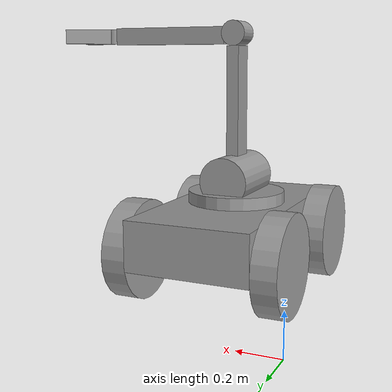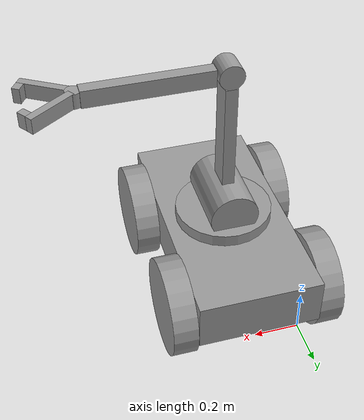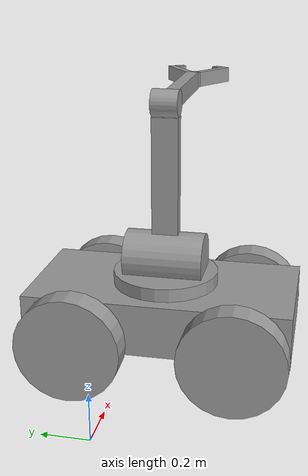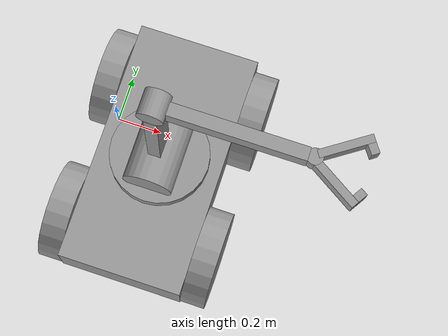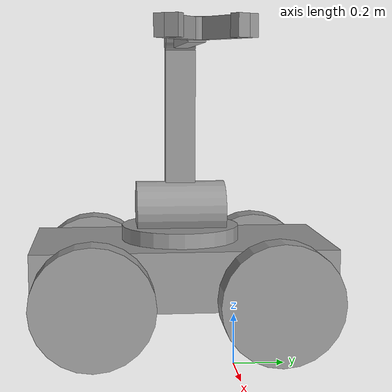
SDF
<?xml version='1.0'?>
<sdf version='1.6'>
  <model name='SimpleRobot'>
    <link name='link_0'>
      <pose frame=''>0.29527 -0.23469 0.458333 0 -0 0</pose>
      <inertial>
        <mass>10</mass>
        <inertia>
          <ixx>0.166667</ixx>
          <ixy>0</ixy>
          <ixz>0</ixz>
          <iyy>0.166667</iyy>
          <iyz>0</iyz>
          <izz>0.166667</izz>
        </inertia>
        <pose frame=''>0 0 0 0 -0 0</pose>
      </inertial>
      <self_collide>0</self_collide>
      <kinematic>0</kinematic>
      <visual name='visual'>
        <pose frame=''>0 0 0 0 -0 0</pose>
        <geometry>
          <box>
            <size>0.5 1 0.2</size>
          </box>
        </geometry>
        <material>
          <lighting>1</lighting>
          <script>
            <uri>file://media/materials/scripts/gazebo.material</uri>
            <name>Gazebo/Grey</name>
          </script>
          <ambient>0.3 0.3 0.3 1</ambient>
          <diffuse>0.7 0.7 0.7 1</diffuse>
          <specular>0.01 0.01 0.01 1</specular>
          <emissive>0 0 0 1</emissive>
          <shader type='vertex'>
            <normal_map>__default__</normal_map>
          </shader>
        </material>
        <transparency>0</transparency>
        <cast_shadows>1</cast_shadows>
      </visual>
      <collision name='collision'>
        <laser_retro>0</laser_retro>
        <max_contacts>10</max_contacts>
        <pose frame=''>0 0 0 0 -0 0</pose>
        <geometry>
          <box>
            <size>0.5 1 0.2</size>
          </box>
        </geometry>
        <surface>
          <friction>
            <ode>
              <mu>1</mu>
              <mu2>1</mu2>
              <fdir1>0 0 0</fdir1>
              <slip1>0</slip1>
              <slip2>0</slip2>
            </ode>
            <torsional>
              <coefficient>1</coefficient>
              <patch_radius>0</patch_radius>
              <surface_radius>0</surface_radius>
              <use_patch_radius>1</use_patch_radius>
              <ode>
                <slip>0</slip>
              </ode>
            </torsional>
          </friction>
          <bounce>
            <restitution_coefficient>0</restitution_coefficient>
            <threshold>1e+06</threshold>
          </bounce>
          <contact>
            <collide_without_contact>0</collide_without_contact>
            <collide_without_contact_bitmask>1</collide_without_contact_bitmask>
            <collide_bitmask>1</collide_bitmask>
            <ode>
              <soft_cfm>0</soft_cfm>
              <soft_erp>0.2</soft_erp>
              <kp>1e+13</kp>
              <kd>1</kd>
              <max_vel>0.01</max_vel>
              <min_depth>0</min_depth>
            </ode>
            <bullet>
              <split_impulse>1</split_impulse>
              <split_impulse_penetration_threshold>-0.01</split_impulse_penetration_threshold>
              <soft_cfm>0</soft_cfm>
              <soft_erp>0.2</soft_erp>
              <kp>1e+13</kp>
              <kd>1</kd>
            </bullet>
          </contact>
        </surface>
      </collision>
    </link>
    <link name='link_0_0'>
      <pose frame=''>0.29527 -0.23469 0.658347 0 -0 0</pose>
      <inertial>
        <mass>1</mass>
        <inertia>
          <ixx>0.145833</ixx>
          <ixy>0</ixy>
          <ixz>0</ixz>
          <iyy>0.145833</iyy>
          <iyz>0</iyz>
          <izz>0.125</izz>
        </inertia>
        <pose frame=''>0 0 0 0 -0 0</pose>
      </inertial>
      <self_collide>0</self_collide>
      <kinematic>0</kinematic>
      <visual name='visual'>
        <pose frame=''>0 0 0 1.5707 -0 0</pose>
        <geometry>
          <cylinder>
            <radius>0.1</radius>
            <length>0.3</length>
          </cylinder>
        </geometry>
        <material>
          <lighting>1</lighting>
          <script>
            <uri>file://media/materials/scripts/gazebo.material</uri>
            <name>Gazebo/Grey</name>
          </script>
          <ambient>0.3 0.3 0.3 1</ambient>
          <diffuse>0.7 0.7 0.7 1</diffuse>
          <specular>0.01 0.01 0.01 1</specular>
          <emissive>0 0 0 1</emissive>
          <shader type='vertex'>
            <normal_map>__default__</normal_map>
          </shader>
        </material>
        <transparency>0</transparency>
        <cast_shadows>1</cast_shadows>
      </visual>
      <collision name='collision'>
        <laser_retro>0</laser_retro>
        <max_contacts>10</max_contacts>
        <pose frame=''>0 0 0 1.5707 -0 0</pose>
        <geometry>
          <cylinder>
            <radius>0.1</radius>
            <length>0.3</length>
          </cylinder>
        </geometry>
        <surface>
          <friction>
            <ode>
              <mu>1</mu>
              <mu2>1</mu2>
              <fdir1>0 0 0</fdir1>
              <slip1>0</slip1>
              <slip2>0</slip2>
            </ode>
            <torsional>
              <coefficient>1</coefficient>
              <patch_radius>0</patch_radius>
              <surface_radius>0</surface_radius>
              <use_patch_radius>1</use_patch_radius>
              <ode>
                <slip>0</slip>
              </ode>
            </torsional>
          </friction>
          <bounce>
            <restitution_coefficient>0</restitution_coefficient>
            <threshold>1e+06</threshold>
          </bounce>
          <contact>
            <collide_without_contact>0</collide_without_contact>
            <collide_without_contact_bitmask>1</collide_without_contact_bitmask>
            <collide_bitmask>1</collide_bitmask>
            <ode>
              <soft_cfm>0</soft_cfm>
              <soft_erp>0.2</soft_erp>
              <kp>1e+13</kp>
              <kd>1</kd>
              <max_vel>0.01</max_vel>
              <min_depth>0</min_depth>
            </ode>
            <bullet>
              <split_impulse>1</split_impulse>
              <split_impulse_penetration_threshold>-0.01</split_impulse_penetration_threshold>
              <soft_cfm>0</soft_cfm>
              <soft_erp>0.2</soft_erp>
              <kp>1e+13</kp>
              <kd>1</kd>
            </bullet>
          </contact>
        </surface>
      </collision>
    </link>
    <link name='link_0_0_clone'>
      <pose frame=''>0.29527 -0.23469 1.24743 0 -0 0</pose>
      <inertial>
        <mass>1</mass>
        <inertia>
          <ixx>0.145833</ixx>
          <ixy>0</ixy>
          <ixz>0</ixz>
          <iyy>0.145833</iyy>
          <iyz>0</iyz>
          <izz>0.125</izz>
        </inertia>
        <pose frame=''>0 0 0 0 -0 0</pose>
      </inertial>
      <self_collide>0</self_collide>
      <kinematic>0</kinematic>
      <visual name='visual_0'>
        <pose frame=''>0 0 0 1.5707 -0 0</pose>
        <geometry>
          <cylinder>
            <radius>0.05</radius>
            <length>0.1</length>
          </cylinder>
        </geometry>
        <material>
          <lighting>1</lighting>
          <script>
            <uri>file://media/materials/scripts/gazebo.material</uri>
            <name>Gazebo/Grey</name>
          </script>
          <ambient>0.3 0.3 0.3 1</ambient>
          <diffuse>0.7 0.7 0.7 1</diffuse>
          <specular>0.01 0.01 0.01 1</specular>
          <emissive>0 0 0 1</emissive>
          <shader type='vertex'>
            <normal_map>__default__</normal_map>
          </shader>
        </material>
        <transparency>0</transparency>
        <cast_shadows>1</cast_shadows>
      </visual>
      <collision name='collision'>
        <laser_retro>0</laser_retro>
        <max_contacts>10</max_contacts>
        <pose frame=''>0 0 0 1.5707 -0 0</pose>
        <geometry>
          <cylinder>
            <radius>0.05</radius>
            <length>0.1</length>
          </cylinder>
        </geometry>
        <surface>
          <friction>
            <ode>
              <mu>1</mu>
              <mu2>1</mu2>
              <fdir1>0 0 0</fdir1>
              <slip1>0</slip1>
              <slip2>0</slip2>
            </ode>
            <torsional>
              <coefficient>1</coefficient>
              <patch_radius>0</patch_radius>
              <surface_radius>0</surface_radius>
              <use_patch_radius>1</use_patch_radius>
              <ode>
                <slip>0</slip>
              </ode>
            </torsional>
          </friction>
          <bounce>
            <restitution_coefficient>0</restitution_coefficient>
            <threshold>1e+06</threshold>
          </bounce>
          <contact>
            <collide_without_contact>0</collide_without_contact>
            <collide_without_contact_bitmask>1</collide_without_contact_bitmask>
            <collide_bitmask>1</collide_bitmask>
            <ode>
              <soft_cfm>0</soft_cfm>
              <soft_erp>0.2</soft_erp>
              <kp>1e+13</kp>
              <kd>1</kd>
              <max_vel>0.01</max_vel>
              <min_depth>0</min_depth>
            </ode>
            <bullet>
              <split_impulse>1</split_impulse>
              <split_impulse_penetration_threshold>-0.01</split_impulse_penetration_threshold>
              <soft_cfm>0</soft_cfm>
              <soft_erp>0.2</soft_erp>
              <kp>1e+13</kp>
              <kd>1</kd>
            </bullet>
          </contact>
        </surface>
      </collision>
    </link>
    <link name='link_0_1'>
      <pose frame=''>0.86527 -0.23469 1.23978 -1e-05 -7e-06 -0.554613</pose>
      <inertial>
        <mass>1</mass>
        <inertia>
          <ixx>0.145833</ixx>
          <ixy>0</ixy>
          <ixz>0</ixz>
          <iyy>0.145833</iyy>
          <iyz>0</iyz>
          <izz>0.125</izz>
        </inertia>
        <pose frame=''>0 0 0 0 -0 0</pose>
      </inertial>
      <self_collide>0</self_collide>
      <kinematic>0</kinematic>
      <visual name='visual'>
        <pose frame=''>0 0 0 0 -0 0</pose>
        <geometry>
          <cylinder>
            <radius>0.03</radius>
            <length>0.06</length>
          </cylinder>
        </geometry>
        <material>
          <lighting>1</lighting>
          <script>
            <uri>file://media/materials/scripts/gazebo.material</uri>
            <name>Gazebo/Grey</name>
          </script>
          <ambient>0.3 0.3 0.3 1</ambient>
          <diffuse>0.7 0.7 0.7 1</diffuse>
          <specular>0.01 0.01 0.01 1</specular>
          <emissive>0 0 0 1</emissive>
          <shader type='vertex'>
            <normal_map>__default__</normal_map>
          </shader>
        </material>
        <transparency>0</transparency>
        <cast_shadows>1</cast_shadows>
      </visual>
      <collision name='collision'>
        <laser_retro>0</laser_retro>
        <max_contacts>10</max_contacts>
        <pose frame=''>0 0 0 0 -0 0</pose>
        <geometry>
          <cylinder>
            <radius>0.03</radius>
            <length>0.06</length>
          </cylinder>
        </geometry>
        <surface>
          <friction>
            <ode>
              <mu>1</mu>
              <mu2>1</mu2>
              <fdir1>0 0 0</fdir1>
              <slip1>0</slip1>
              <slip2>0</slip2>
            </ode>
            <torsional>
              <coefficient>1</coefficient>
              <patch_radius>0</patch_radius>
              <surface_radius>0</surface_radius>
              <use_patch_radius>1</use_patch_radius>
              <ode>
                <slip>0</slip>
              </ode>
            </torsional>
          </friction>
          <bounce>
            <restitution_coefficient>0</restitution_coefficient>
            <threshold>1e+06</threshold>
          </bounce>
          <contact>
            <collide_without_contact>0</collide_without_contact>
            <collide_without_contact_bitmask>1</collide_without_contact_bitmask>
            <collide_bitmask>1</collide_bitmask>
            <ode>
              <soft_cfm>0</soft_cfm>
              <soft_erp>0.2</soft_erp>
              <kp>1e+13</kp>
              <kd>1</kd>
              <max_vel>0.01</max_vel>
              <min_depth>0</min_depth>
            </ode>
            <bullet>
              <split_impulse>1</split_impulse>
              <split_impulse_penetration_threshold>-0.01</split_impulse_penetration_threshold>
              <soft_cfm>0</soft_cfm>
              <soft_erp>0.2</soft_erp>
              <kp>1e+13</kp>
              <kd>1</kd>
            </bullet>
          </contact>
        </surface>
      </collision>
    </link>
    <link name='link_1'>
      <pose frame=''>0.29527 -0.23469 0.583333 0 -0 0</pose>
      <inertial>
        <mass>1</mass>
        <inertia>
          <ixx>0.145833</ixx>
          <ixy>0</ixy>
          <ixz>0</ixz>
          <iyy>0.145833</iyy>
          <iyz>0</iyz>
          <izz>0.125</izz>
        </inertia>
        <pose frame=''>0 0 0 0 -0 0</pose>
      </inertial>
      <self_collide>0</self_collide>
      <kinematic>0</kinematic>
      <visual name='visual'>
        <pose frame=''>0 0 0 0 -0 0</pose>
        <geometry>
          <cylinder>
            <radius>0.2</radius>
            <length>0.05</length>
          </cylinder>
        </geometry>
        <material>
          <lighting>1</lighting>
          <script>
            <uri>file://media/materials/scripts/gazebo.material</uri>
            <name>Gazebo/Grey</name>
          </script>
          <ambient>0.3 0.3 0.3 1</ambient>
          <diffuse>0.7 0.7 0.7 1</diffuse>
          <specular>0.01 0.01 0.01 1</specular>
          <emissive>0 0 0 1</emissive>
          <shader type='vertex'>
            <normal_map>__default__</normal_map>
          </shader>
        </material>
        <transparency>0</transparency>
        <cast_shadows>1</cast_shadows>
      </visual>
      <collision name='collision'>
        <laser_retro>0</laser_retro>
        <max_contacts>10</max_contacts>
        <pose frame=''>0 0 0 0 -0 0</pose>
        <geometry>
          <cylinder>
            <radius>0.2</radius>
            <length>0.05</length>
          </cylinder>
        </geometry>
        <surface>
          <friction>
            <ode>
              <mu>1</mu>
              <mu2>1</mu2>
              <fdir1>0 0 0</fdir1>
              <slip1>0</slip1>
              <slip2>0</slip2>
            </ode>
            <torsional>
              <coefficient>1</coefficient>
              <patch_radius>0</patch_radius>
              <surface_radius>0</surface_radius>
              <use_patch_radius>1</use_patch_radius>
              <ode>
                <slip>0</slip>
              </ode>
            </torsional>
          </friction>
          <bounce>
            <restitution_coefficient>0</restitution_coefficient>
            <threshold>1e+06</threshold>
          </bounce>
          <contact>
            <collide_without_contact>0</collide_without_contact>
            <collide_without_contact_bitmask>1</collide_without_contact_bitmask>
            <collide_bitmask>1</collide_bitmask>
            <ode>
              <soft_cfm>0</soft_cfm>
              <soft_erp>0.2</soft_erp>
              <kp>1e+13</kp>
              <kd>1</kd>
              <max_vel>0.01</max_vel>
              <min_depth>0</min_depth>
            </ode>
            <bullet>
              <split_impulse>1</split_impulse>
              <split_impulse_penetration_threshold>-0.01</split_impulse_penetration_threshold>
              <soft_cfm>0</soft_cfm>
              <soft_erp>0.2</soft_erp>
              <kp>1e+13</kp>
              <kd>1</kd>
            </bullet>
          </contact>
        </surface>
      </collision>
    </link>
    <link name='link_1_0'>
      <pose frame=''>0.29527 -0.23469 0.948333 0 -0 0</pose>
      <inertial>
        <mass>1</mass>
        <inertia>
          <ixx>0.166667</ixx>
          <ixy>0</ixy>
          <ixz>0</ixz>
          <iyy>0.166667</iyy>
          <iyz>0</iyz>
          <izz>0.166667</izz>
        </inertia>
        <pose frame=''>0 0 0 0 -0 0</pose>
      </inertial>
      <self_collide>0</self_collide>
      <kinematic>0</kinematic>
      <visual name='visual'>
        <pose frame=''>0 0 0 0 -0 0</pose>
        <geometry>
          <box>
            <size>0.05 0.1 0.5</size>
          </box>
        </geometry>
        <material>
          <lighting>1</lighting>
          <script>
            <uri>file://media/materials/scripts/gazebo.material</uri>
            <name>Gazebo/Grey</name>
          </script>
          <ambient>0.3 0.3 0.3 1</ambient>
          <diffuse>0.7 0.7 0.7 1</diffuse>
          <specular>0.01 0.01 0.01 1</specular>
          <emissive>0 0 0 1</emissive>
          <shader type='vertex'>
            <normal_map>__default__</normal_map>
          </shader>
        </material>
        <transparency>0</transparency>
        <cast_shadows>1</cast_shadows>
      </visual>
      <collision name='collision'>
        <laser_retro>0</laser_retro>
        <max_contacts>10</max_contacts>
        <pose frame=''>0 0 0 0 -0 0</pose>
        <geometry>
          <box>
            <size>0.05 0.1 0.5</size>
          </box>
        </geometry>
        <surface>
          <friction>
            <ode>
              <mu>1</mu>
              <mu2>1</mu2>
              <fdir1>0 0 0</fdir1>
              <slip1>0</slip1>
              <slip2>0</slip2>
            </ode>
            <torsional>
              <coefficient>1</coefficient>
              <patch_radius>0</patch_radius>
              <surface_radius>0</surface_radius>
              <use_patch_radius>1</use_patch_radius>
              <ode>
                <slip>0</slip>
              </ode>
            </torsional>
          </friction>
          <bounce>
            <restitution_coefficient>0</restitution_coefficient>
            <threshold>1e+06</threshold>
          </bounce>
          <contact>
            <collide_without_contact>0</collide_without_contact>
            <collide_without_contact_bitmask>1</collide_without_contact_bitmask>
            <collide_bitmask>1</collide_bitmask>
            <ode>
              <soft_cfm>0</soft_cfm>
              <soft_erp>0.2</soft_erp>
              <kp>1e+13</kp>
              <kd>1</kd>
              <max_vel>0.01</max_vel>
              <min_depth>0</min_depth>
            </ode>
            <bullet>
              <split_impulse>1</split_impulse>
              <split_impulse_penetration_threshold>-0.01</split_impulse_penetration_threshold>
              <soft_cfm>0</soft_cfm>
              <soft_erp>0.2</soft_erp>
              <kp>1e+13</kp>
              <kd>1</kd>
            </bullet>
          </contact>
        </surface>
      </collision>
    </link>
    <link name='link_1_0_clone'>
      <pose frame=''>-0.00477 0.065305 0.398328 0 -0 0</pose>
      <inertial>
        <mass>1</mass>
        <inertia>
          <ixx>0.145833</ixx>
          <ixy>0</ixy>
          <ixz>0</ixz>
          <iyy>0.145833</iyy>
          <iyz>0</iyz>
          <izz>0.125</izz>
        </inertia>
        <pose frame=''>0 0 0 0 -0 0</pose>
      </inertial>
      <self_collide>0</self_collide>
      <kinematic>0</kinematic>
      <visual name='visual'>
        <pose frame=''>0 0 0 1.5707 0 1.5707</pose>
        <geometry>
          <cylinder>
            <radius>0.2</radius>
            <length>0.1</length>
          </cylinder>
        </geometry>
        <material>
          <lighting>1</lighting>
          <script>
            <uri>file://media/materials/scripts/gazebo.material</uri>
            <name>Gazebo/Grey</name>
          </script>
          <ambient>0.3 0.3 0.3 1</ambient>
          <diffuse>0.7 0.7 0.7 1</diffuse>
          <specular>0.01 0.01 0.01 1</specular>
          <emissive>0 0 0 1</emissive>
          <shader type='vertex'>
            <normal_map>__default__</normal_map>
          </shader>
        </material>
        <transparency>0</transparency>
        <cast_shadows>1</cast_shadows>
      </visual>
      <collision name='collision'>
        <laser_retro>0</laser_retro>
        <max_contacts>10</max_contacts>
        <pose frame=''>0 0 0 1.5707 0 1.5707</pose>
        <geometry>
          <cylinder>
            <radius>0.2</radius>
            <length>0.1</length>
          </cylinder>
        </geometry>
        <surface>
          <friction>
            <ode>
              <mu>1</mu>
              <mu2>1</mu2>
              <fdir1>0 0 0</fdir1>
              <slip1>0</slip1>
              <slip2>0</slip2>
            </ode>
            <torsional>
              <coefficient>1</coefficient>
              <patch_radius>0</patch_radius>
              <surface_radius>0</surface_radius>
              <use_patch_radius>1</use_patch_radius>
              <ode>
                <slip>0</slip>
              </ode>
            </torsional>
          </friction>
          <bounce>
            <restitution_coefficient>0</restitution_coefficient>
            <threshold>1e+06</threshold>
          </bounce>
          <contact>
            <collide_without_contact>0</collide_without_contact>
            <collide_without_contact_bitmask>1</collide_without_contact_bitmask>
            <collide_bitmask>1</collide_bitmask>
            <ode>
              <soft_cfm>0</soft_cfm>
              <soft_erp>0.2</soft_erp>
              <kp>1e+13</kp>
              <kd>1</kd>
              <max_vel>0.01</max_vel>
              <min_depth>0</min_depth>
            </ode>
            <bullet>
              <split_impulse>1</split_impulse>
              <split_impulse_penetration_threshold>-0.01</split_impulse_penetration_threshold>
              <soft_cfm>0</soft_cfm>
              <soft_erp>0.2</soft_erp>
              <kp>1e+13</kp>
              <kd>1</kd>
            </bullet>
          </contact>
        </surface>
      </collision>
    </link>
    <link name='link_1_0_clone_0'>
      <pose frame=''>0.59531 0.065305 0.398328 0 -0 0</pose>
      <inertial>
        <mass>1</mass>
        <inertia>
          <ixx>0.145833</ixx>
          <ixy>0</ixy>
          <ixz>0</ixz>
          <iyy>0.145833</iyy>
          <iyz>0</iyz>
          <izz>0.125</izz>
        </inertia>
        <pose frame=''>0 0 0 0 -0 0</pose>
      </inertial>
      <self_collide>0</self_collide>
      <kinematic>0</kinematic>
      <visual name='visual'>
        <pose frame=''>0 0 0 1.5707 0 1.5707</pose>
        <geometry>
          <cylinder>
            <radius>0.2</radius>
            <length>0.1</length>
          </cylinder>
        </geometry>
        <material>
          <lighting>1</lighting>
          <script>
            <uri>file://media/materials/scripts/gazebo.material</uri>
            <name>Gazebo/Grey</name>
          </script>
          <ambient>0.3 0.3 0.3 1</ambient>
          <diffuse>0.7 0.7 0.7 1</diffuse>
          <specular>0.01 0.01 0.01 1</specular>
          <emissive>0 0 0 1</emissive>
          <shader type='vertex'>
            <normal_map>__default__</normal_map>
          </shader>
        </material>
        <transparency>0</transparency>
        <cast_shadows>1</cast_shadows>
      </visual>
      <collision name='collision'>
        <laser_retro>0</laser_retro>
        <max_contacts>10</max_contacts>
        <pose frame=''>0 0 0 1.5707 0 1.5707</pose>
        <geometry>
          <cylinder>
            <radius>0.2</radius>
            <length>0.1</length>
          </cylinder>
        </geometry>
        <surface>
          <friction>
            <ode>
              <mu>1</mu>
              <mu2>1</mu2>
              <fdir1>0 0 0</fdir1>
              <slip1>0</slip1>
              <slip2>0</slip2>
            </ode>
            <torsional>
              <coefficient>1</coefficient>
              <patch_radius>0</patch_radius>
              <surface_radius>0</surface_radius>
              <use_patch_radius>1</use_patch_radius>
              <ode>
                <slip>0</slip>
              </ode>
            </torsional>
          </friction>
          <bounce>
            <restitution_coefficient>0</restitution_coefficient>
            <threshold>1e+06</threshold>
          </bounce>
          <contact>
            <collide_without_contact>0</collide_without_contact>
            <collide_without_contact_bitmask>1</collide_without_contact_bitmask>
            <collide_bitmask>1</collide_bitmask>
            <ode>
              <soft_cfm>0</soft_cfm>
              <soft_erp>0.2</soft_erp>
              <kp>1e+13</kp>
              <kd>1</kd>
              <max_vel>0.01</max_vel>
              <min_depth>0</min_depth>
            </ode>
            <bullet>
              <split_impulse>1</split_impulse>
              <split_impulse_penetration_threshold>-0.01</split_impulse_penetration_threshold>
              <soft_cfm>0</soft_cfm>
              <soft_erp>0.2</soft_erp>
              <kp>1e+13</kp>
              <kd>1</kd>
            </bullet>
          </contact>
        </surface>
      </collision>
    </link>
    <link name='link_1_0_clone_1'>
      <pose frame=''>0.59531 -0.534685 0.398328 0 -0 0</pose>
      <inertial>
        <mass>1</mass>
        <inertia>
          <ixx>0.145833</ixx>
          <ixy>0</ixy>
          <ixz>0</ixz>
          <iyy>0.145833</iyy>
          <iyz>0</iyz>
          <izz>0.125</izz>
        </inertia>
        <pose frame=''>0 0 0 0 -0 0</pose>
      </inertial>
      <self_collide>0</self_collide>
      <kinematic>0</kinematic>
      <visual name='visual'>
        <pose frame=''>0 0 0 1.5707 0 1.5707</pose>
        <geometry>
          <cylinder>
            <radius>0.2</radius>
            <length>0.1</length>
          </cylinder>
        </geometry>
        <material>
          <lighting>1</lighting>
          <script>
            <uri>file://media/materials/scripts/gazebo.material</uri>
            <name>Gazebo/Grey</name>
          </script>
          <ambient>0.3 0.3 0.3 1</ambient>
          <diffuse>0.7 0.7 0.7 1</diffuse>
          <specular>0.01 0.01 0.01 1</specular>
          <emissive>0 0 0 1</emissive>
          <shader type='vertex'>
            <normal_map>__default__</normal_map>
          </shader>
        </material>
        <transparency>0</transparency>
        <cast_shadows>1</cast_shadows>
      </visual>
      <collision name='collision'>
        <laser_retro>0</laser_retro>
        <max_contacts>10</max_contacts>
        <pose frame=''>0 0 0 1.5707 0 1.5707</pose>
        <geometry>
          <cylinder>
            <radius>0.2</radius>
            <length>0.1</length>
          </cylinder>
        </geometry>
        <surface>
          <friction>
            <ode>
              <mu>1</mu>
              <mu2>1</mu2>
              <fdir1>0 0 0</fdir1>
              <slip1>0</slip1>
              <slip2>0</slip2>
            </ode>
            <torsional>
              <coefficient>1</coefficient>
              <patch_radius>0</patch_radius>
              <surface_radius>0</surface_radius>
              <use_patch_radius>1</use_patch_radius>
              <ode>
                <slip>0</slip>
              </ode>
            </torsional>
          </friction>
          <bounce>
            <restitution_coefficient>0</restitution_coefficient>
            <threshold>1e+06</threshold>
          </bounce>
          <contact>
            <collide_without_contact>0</collide_without_contact>
            <collide_without_contact_bitmask>1</collide_without_contact_bitmask>
            <collide_bitmask>1</collide_bitmask>
            <ode>
              <soft_cfm>0</soft_cfm>
              <soft_erp>0.2</soft_erp>
              <kp>1e+13</kp>
              <kd>1</kd>
              <max_vel>0.01</max_vel>
              <min_depth>0</min_depth>
            </ode>
            <bullet>
              <split_impulse>1</split_impulse>
              <split_impulse_penetration_threshold>-0.01</split_impulse_penetration_threshold>
              <soft_cfm>0</soft_cfm>
              <soft_erp>0.2</soft_erp>
              <kp>1e+13</kp>
              <kd>1</kd>
            </bullet>
          </contact>
        </surface>
      </collision>
    </link>
    <link name='link_1_0_clone_1_clone'>
      <pose frame=''>-0.00477 -0.534685 0.398328 0 -0 0</pose>
      <inertial>
        <mass>1</mass>
        <inertia>
          <ixx>0.145833</ixx>
          <ixy>0</ixy>
          <ixz>0</ixz>
          <iyy>0.145833</iyy>
          <iyz>0</iyz>
          <izz>0.125</izz>
        </inertia>
        <pose frame=''>0 0 0 0 -0 0</pose>
      </inertial>
      <self_collide>0</self_collide>
      <kinematic>0</kinematic>
      <visual name='visual'>
        <pose frame=''>0 0 0 1.5707 0 1.5707</pose>
        <geometry>
          <cylinder>
            <radius>0.2</radius>
            <length>0.1</length>
          </cylinder>
        </geometry>
        <material>
          <lighting>1</lighting>
          <script>
            <uri>file://media/materials/scripts/gazebo.material</uri>
            <name>Gazebo/Grey</name>
          </script>
          <ambient>0.3 0.3 0.3 1</ambient>
          <diffuse>0.7 0.7 0.7 1</diffuse>
          <specular>0.01 0.01 0.01 1</specular>
          <emissive>0 0 0 1</emissive>
          <shader type='vertex'>
            <normal_map>__default__</normal_map>
          </shader>
        </material>
        <transparency>0</transparency>
        <cast_shadows>1</cast_shadows>
      </visual>
      <collision name='collision'>
        <laser_retro>0</laser_retro>
        <max_contacts>10</max_contacts>
        <pose frame=''>0 0 0 1.5707 0 1.5707</pose>
        <geometry>
          <cylinder>
            <radius>0.2</radius>
            <length>0.1</length>
          </cylinder>
        </geometry>
        <surface>
          <friction>
            <ode>
              <mu>1</mu>
              <mu2>1</mu2>
              <fdir1>0 0 0</fdir1>
              <slip1>0</slip1>
              <slip2>0</slip2>
            </ode>
            <torsional>
              <coefficient>1</coefficient>
              <patch_radius>0</patch_radius>
              <surface_radius>0</surface_radius>
              <use_patch_radius>1</use_patch_radius>
              <ode>
                <slip>0</slip>
              </ode>
            </torsional>
          </friction>
          <bounce>
            <restitution_coefficient>0</restitution_coefficient>
            <threshold>1e+06</threshold>
          </bounce>
          <contact>
            <collide_without_contact>0</collide_without_contact>
            <collide_without_contact_bitmask>1</collide_without_contact_bitmask>
            <collide_bitmask>1</collide_bitmask>
            <ode>
              <soft_cfm>0</soft_cfm>
              <soft_erp>0.2</soft_erp>
              <kp>1e+13</kp>
              <kd>1</kd>
              <max_vel>0.01</max_vel>
              <min_depth>0</min_depth>
            </ode>
            <bullet>
              <split_impulse>1</split_impulse>
              <split_impulse_penetration_threshold>-0.01</split_impulse_penetration_threshold>
              <soft_cfm>0</soft_cfm>
              <soft_erp>0.2</soft_erp>
              <kp>1e+13</kp>
              <kd>1</kd>
            </bullet>
          </contact>
        </surface>
      </collision>
    </link>
    <link name='link_1_0_clone_2'>
      <pose frame=''>0.59527 -0.23469 1.23978 0 -0 0</pose>
      <inertial>
        <mass>1</mass>
        <inertia>
          <ixx>0.166667</ixx>
          <ixy>0</ixy>
          <ixz>0</ixz>
          <iyy>0.166667</iyy>
          <iyz>0</iyz>
          <izz>0.166667</izz>
        </inertia>
        <pose frame=''>0 0 0 0 -0 0</pose>
      </inertial>
      <self_collide>0</self_collide>
      <kinematic>0</kinematic>
      <visual name='visual_0'>
        <pose frame=''>0 0 0 0 1.5707 0</pose>
        <geometry>
          <box>
            <size>0.07 0.05 0.5</size>
          </box>
        </geometry>
        <material>
          <lighting>1</lighting>
          <script>
            <uri>file://media/materials/scripts/gazebo.material</uri>
            <name>Gazebo/Grey</name>
          </script>
          <ambient>0.3 0.3 0.3 1</ambient>
          <diffuse>0.7 0.7 0.7 1</diffuse>
          <specular>0.01 0.01 0.01 1</specular>
          <emissive>0 0 0 1</emissive>
          <shader type='vertex'>
            <normal_map>__default__</normal_map>
          </shader>
        </material>
        <transparency>0</transparency>
        <cast_shadows>1</cast_shadows>
      </visual>
      <collision name='collision'>
        <laser_retro>0</laser_retro>
        <max_contacts>10</max_contacts>
        <pose frame=''>0 0 0 0 1.5707 0</pose>
        <geometry>
          <box>
            <size>0.07 0.05 0.5</size>
          </box>
        </geometry>
        <surface>
          <friction>
            <ode>
              <mu>1</mu>
              <mu2>1</mu2>
              <fdir1>0 0 0</fdir1>
              <slip1>0</slip1>
              <slip2>0</slip2>
            </ode>
            <torsional>
              <coefficient>1</coefficient>
              <patch_radius>0</patch_radius>
              <surface_radius>0</surface_radius>
              <use_patch_radius>1</use_patch_radius>
              <ode>
                <slip>0</slip>
              </ode>
            </torsional>
          </friction>
          <bounce>
            <restitution_coefficient>0</restitution_coefficient>
            <threshold>1e+06</threshold>
          </bounce>
          <contact>
            <collide_without_contact>0</collide_without_contact>
            <collide_without_contact_bitmask>1</collide_without_contact_bitmask>
            <collide_bitmask>1</collide_bitmask>
            <ode>
              <soft_cfm>0</soft_cfm>
              <soft_erp>0.2</soft_erp>
              <kp>1e+13</kp>
              <kd>1</kd>
              <max_vel>0.01</max_vel>
              <min_depth>0</min_depth>
            </ode>
            <bullet>
              <split_impulse>1</split_impulse>
              <split_impulse_penetration_threshold>-0.01</split_impulse_penetration_threshold>
              <soft_cfm>0</soft_cfm>
              <soft_erp>0.2</soft_erp>
              <kp>1e+13</kp>
              <kd>1</kd>
            </bullet>
          </contact>
        </surface>
      </collision>
    </link>
    <link name='link_1_1'>
      <pose frame=''>0.954832 -0.298993 1.23978 -1e-05 -7e-06 -0.554613</pose>
      <inertial>
        <mass>1</mass>
        <inertia>
          <ixx>0.166667</ixx>
          <ixy>0</ixy>
          <ixz>0</ixz>
          <iyy>0.166667</iyy>
          <iyz>0</iyz>
          <izz>0.166667</izz>
        </inertia>
        <pose frame=''>0 0 0 0 -0 0</pose>
      </inertial>
      <self_collide>0</self_collide>
      <kinematic>0</kinematic>
      <visual name='visual'>
        <pose frame=''>0 0 0 0 -0 0</pose>
        <geometry>
          <box>
            <size>0.2 0.03 0.06</size>
          </box>
        </geometry>
        <material>
          <lighting>1</lighting>
          <script>
            <uri>file://media/materials/scripts/gazebo.material</uri>
            <name>Gazebo/Grey</name>
          </script>
          <ambient>0.3 0.3 0.3 1</ambient>
          <diffuse>0.7 0.7 0.7 1</diffuse>
          <specular>0.01 0.01 0.01 1</specular>
          <emissive>0 0 0 1</emissive>
          <shader type='vertex'>
            <normal_map>__default__</normal_map>
          </shader>
        </material>
        <transparency>0</transparency>
        <cast_shadows>1</cast_shadows>
      </visual>
      <collision name='collision'>
        <laser_retro>0</laser_retro>
        <max_contacts>10</max_contacts>
        <pose frame=''>0 0 0 0 -0 0</pose>
        <geometry>
          <box>
            <size>0.2 0.03 0.06</size>
          </box>
        </geometry>
        <surface>
          <friction>
            <ode>
              <mu>1</mu>
              <mu2>1</mu2>
              <fdir1>0 0 0</fdir1>
              <slip1>0</slip1>
              <slip2>0</slip2>
            </ode>
            <torsional>
              <coefficient>1</coefficient>
              <patch_radius>0</patch_radius>
              <surface_radius>0</surface_radius>
              <use_patch_radius>1</use_patch_radius>
              <ode>
                <slip>0</slip>
              </ode>
            </torsional>
          </friction>
          <bounce>
            <restitution_coefficient>0</restitution_coefficient>
            <threshold>1e+06</threshold>
          </bounce>
          <contact>
            <collide_without_contact>0</collide_without_contact>
            <collide_without_contact_bitmask>1</collide_without_contact_bitmask>
            <collide_bitmask>1</collide_bitmask>
            <ode>
              <soft_cfm>0</soft_cfm>
              <soft_erp>0.2</soft_erp>
              <kp>1e+13</kp>
              <kd>1</kd>
              <max_vel>0.01</max_vel>
              <min_depth>0</min_depth>
            </ode>
            <bullet>
              <split_impulse>1</split_impulse>
              <split_impulse_penetration_threshold>-0.01</split_impulse_penetration_threshold>
              <soft_cfm>0</soft_cfm>
              <soft_erp>0.2</soft_erp>
              <kp>1e+13</kp>
              <kd>1</kd>
            </bullet>
          </contact>
        </surface>
      </collision>
    </link>
    <link name='link_1_1_clone'>
      <pose frame=''>0.954569 -0.166494 1.23978 -1.6e-05 1.7e-05 0.603129</pose>
      <inertial>
        <mass>1</mass>
        <inertia>
          <ixx>0.166667</ixx>
          <ixy>0</ixy>
          <ixz>0</ixz>
          <iyy>0.166667</iyy>
          <iyz>0</iyz>
          <izz>0.166667</izz>
        </inertia>
        <pose frame=''>0 0 0 0 -0 0</pose>
      </inertial>
      <self_collide>0</self_collide>
      <kinematic>0</kinematic>
      <visual name='visual_0'>
        <pose frame=''>0 0 0 0 -0 0</pose>
        <geometry>
          <box>
            <size>0.2 0.03 0.06</size>
          </box>
        </geometry>
        <material>
          <lighting>1</lighting>
          <script>
            <uri>file://media/materials/scripts/gazebo.material</uri>
            <name>Gazebo/Grey</name>
          </script>
          <ambient>0.3 0.3 0.3 1</ambient>
          <diffuse>0.7 0.7 0.7 1</diffuse>
          <specular>0.01 0.01 0.01 1</specular>
          <emissive>0 0 0 1</emissive>
          <shader type='vertex'>
            <normal_map>__default__</normal_map>
          </shader>
        </material>
        <transparency>0</transparency>
        <cast_shadows>1</cast_shadows>
      </visual>
      <collision name='collision'>
        <laser_retro>0</laser_retro>
        <max_contacts>10</max_contacts>
        <pose frame=''>0 0 0 0 -0 0</pose>
        <geometry>
          <box>
            <size>0.2 0.03 0.06</size>
          </box>
        </geometry>
        <surface>
          <friction>
            <ode>
              <mu>1</mu>
              <mu2>1</mu2>
              <fdir1>0 0 0</fdir1>
              <slip1>0</slip1>
              <slip2>0</slip2>
            </ode>
            <torsional>
              <coefficient>1</coefficient>
              <patch_radius>0</patch_radius>
              <surface_radius>0</surface_radius>
              <use_patch_radius>1</use_patch_radius>
              <ode>
                <slip>0</slip>
              </ode>
            </torsional>
          </friction>
          <bounce>
            <restitution_coefficient>0</restitution_coefficient>
            <threshold>1e+06</threshold>
          </bounce>
          <contact>
            <collide_without_contact>0</collide_without_contact>
            <collide_without_contact_bitmask>1</collide_without_contact_bitmask>
            <collide_bitmask>1</collide_bitmask>
            <ode>
              <soft_cfm>0</soft_cfm>
              <soft_erp>0.2</soft_erp>
              <kp>1e+13</kp>
              <kd>1</kd>
              <max_vel>0.01</max_vel>
              <min_depth>0</min_depth>
            </ode>
            <bullet>
              <split_impulse>1</split_impulse>
              <split_impulse_penetration_threshold>-0.01</split_impulse_penetration_threshold>
              <soft_cfm>0</soft_cfm>
              <soft_erp>0.2</soft_erp>
              <kp>1e+13</kp>
              <kd>1</kd>
            </bullet>
          </contact>
        </surface>
      </collision>
    </link>
    <link name='link_1_1_clone_clone'>
      <pose frame=''>1.04426 -0.146801 1.23978 -6e-06 1e-06 -0.947743</pose>
      <inertial>
        <mass>1</mass>
        <inertia>
          <ixx>0.166667</ixx>
          <ixy>0</ixy>
          <ixz>0</ixz>
          <iyy>0.166667</iyy>
          <iyz>0</iyz>
          <izz>0.166667</izz>
        </inertia>
        <pose frame=''>0 0 0 0 -0 0</pose>
      </inertial>
      <self_collide>0</self_collide>
      <kinematic>0</kinematic>
      <gravity>1</gravity>
      <visual name='visual_0'>
        <pose frame=''>0 0 0 0 -0 0</pose>
        <geometry>
          <box>
            <size>0.04 0.03 0.06</size>
          </box>
        </geometry>
        <material>
          <lighting>1</lighting>
          <script>
            <uri>file://media/materials/scripts/gazebo.material</uri>
            <name>Gazebo/Grey</name>
          </script>
          <ambient>0.3 0.3 0.3 1</ambient>
          <diffuse>0.7 0.7 0.7 1</diffuse>
          <specular>0.01 0.01 0.01 1</specular>
          <emissive>0 0 0 1</emissive>
          <shader type='vertex'>
            <normal_map>__default__</normal_map>
          </shader>
        </material>
        <transparency>0</transparency>
        <cast_shadows>1</cast_shadows>
      </visual>
      <collision name='collision'>
        <laser_retro>0</laser_retro>
        <max_contacts>10</max_contacts>
        <pose frame=''>0 0 0 0 -0 0</pose>
        <geometry>
          <box>
            <size>0.04 0.03 0.06</size>
          </box>
        </geometry>
        <surface>
          <friction>
            <ode>
              <mu>1</mu>
              <mu2>1</mu2>
              <fdir1>0 0 0</fdir1>
              <slip1>0</slip1>
              <slip2>0</slip2>
            </ode>
            <torsional>
              <coefficient>1</coefficient>
              <patch_radius>0</patch_radius>
              <surface_radius>0</surface_radius>
              <use_patch_radius>1</use_patch_radius>
              <ode>
                <slip>0</slip>
              </ode>
            </torsional>
          </friction>
          <bounce>
            <restitution_coefficient>0</restitution_coefficient>
            <threshold>1e+06</threshold>
          </bounce>
          <contact>
            <collide_without_contact>0</collide_without_contact>
            <collide_without_contact_bitmask>1</collide_without_contact_bitmask>
            <collide_bitmask>1</collide_bitmask>
            <ode>
              <soft_cfm>0</soft_cfm>
              <soft_erp>0.2</soft_erp>
              <kp>1e+13</kp>
              <kd>1</kd>
              <max_vel>0.01</max_vel>
              <min_depth>0</min_depth>
            </ode>
            <bullet>
              <split_impulse>1</split_impulse>
              <split_impulse_penetration_threshold>-0.01</split_impulse_penetration_threshold>
              <soft_cfm>0</soft_cfm>
              <soft_erp>0.2</soft_erp>
              <kp>1e+13</kp>
              <kd>1</kd>
            </bullet>
          </contact>
        </surface>
      </collision>
    </link>
    <link name='link_1_1_clone_clone_clone'>
      <pose frame=''>1.04508 -0.314757 1.23978 -1e-05 1.4e-05 -2.12888</pose>
      <inertial>
        <mass>1</mass>
        <inertia>
          <ixx>0.166667</ixx>
          <ixy>0</ixy>
          <ixz>0</ixz>
          <iyy>0.166667</iyy>
          <iyz>0</iyz>
          <izz>0.166667</izz>
        </inertia>
        <pose frame=''>0 0 0 0 -0 0</pose>
      </inertial>
      <self_collide>0</self_collide>
      <kinematic>0</kinematic>
      <visual name='visual_0'>
        <pose frame=''>0 0 0 0 -0 0</pose>
        <geometry>
          <box>
            <size>0.04 0.03 0.06</size>
          </box>
        </geometry>
        <material>
          <lighting>1</lighting>
          <script>
            <uri>file://media/materials/scripts/gazebo.material</uri>
            <name>Gazebo/Grey</name>
          </script>
          <ambient>0.3 0.3 0.3 1</ambient>
          <diffuse>0.7 0.7 0.7 1</diffuse>
          <specular>0.01 0.01 0.01 1</specular>
          <emissive>0 0 0 1</emissive>
          <shader type='vertex'>
            <normal_map>__default__</normal_map>
          </shader>
        </material>
        <transparency>0</transparency>
        <cast_shadows>1</cast_shadows>
      </visual>
      <collision name='collision'>
        <laser_retro>0</laser_retro>
        <max_contacts>10</max_contacts>
        <pose frame=''>0 0 0 0 -0 0</pose>
        <geometry>
          <box>
            <size>0.04 0.03 0.06</size>
          </box>
        </geometry>
        <surface>
          <friction>
            <ode>
              <mu>1</mu>
              <mu2>1</mu2>
              <fdir1>0 0 0</fdir1>
              <slip1>0</slip1>
              <slip2>0</slip2>
            </ode>
            <torsional>
              <coefficient>1</coefficient>
              <patch_radius>0</patch_radius>
              <surface_radius>0</surface_radius>
              <use_patch_radius>1</use_patch_radius>
              <ode>
                <slip>0</slip>
              </ode>
            </torsional>
          </friction>
          <bounce>
            <restitution_coefficient>0</restitution_coefficient>
            <threshold>1e+06</threshold>
          </bounce>
          <contact>
            <collide_without_contact>0</collide_without_contact>
            <collide_without_contact_bitmask>1</collide_without_contact_bitmask>
            <collide_bitmask>1</collide_bitmask>
            <ode>
              <soft_cfm>0</soft_cfm>
              <soft_erp>0.2</soft_erp>
              <kp>1e+13</kp>
              <kd>1</kd>
              <max_vel>0.01</max_vel>
              <min_depth>0</min_depth>
            </ode>
            <bullet>
              <split_impulse>1</split_impulse>
              <split_impulse_penetration_threshold>-0.01</split_impulse_penetration_threshold>
              <soft_cfm>0</soft_cfm>
              <soft_erp>0.2</soft_erp>
              <kp>1e+13</kp>
              <kd>1</kd>
            </bullet>
          </contact>
        </surface>
      </collision>
    </link>
    <joint name='link_0_0_JOINT_9' type='fixed'>
      <parent>link_0_0</parent>
      <child>link_1_0</child>
      <pose frame=''>0 0 0 0 -0 0</pose>
      <physics>
        <ode>
          <limit>
            <cfm>0</cfm>
            <erp>0.2</erp>
          </limit>
          <suspension>
            <cfm>0</cfm>
            <erp>0.2</erp>
          </suspension>
        </ode>
      </physics>
    </joint>
    <joint name='link_0_0_clone_JOINT_11' type='revolute'>
      <parent>link_0_0_clone</parent>
      <child>link_1_0_clone_2</child>
      <pose frame=''>0 0 0 0 -0 0</pose>
      <axis>
        <xyz>1 0 0</xyz>
        <use_parent_model_frame>0</use_parent_model_frame>
        <limit>
          <lower>-1.79769e+308</lower>
          <upper>1.79769e+308</upper>
          <effort>-1</effort>
          <velocity>-1</velocity>
        </limit>
        <dynamics>
          <spring_reference>0</spring_reference>
          <spring_stiffness>0</spring_stiffness>
          <damping>0</damping>
          <friction>0</friction>
        </dynamics>
      </axis>
      <physics>
        <ode>
          <limit>
            <cfm>0</cfm>
            <erp>0.2</erp>
          </limit>
          <suspension>
            <cfm>0</cfm>
            <erp>0.2</erp>
          </suspension>
        </ode>
      </physics>
    </joint>
    <joint name='link_0_1_JOINT_1' type='revolute'>
      <parent>link_0_1</parent>
      <child>link_1_1</child>
      <pose frame=''>-0.11 0.01 0 0 -0 0</pose>
      <axis>
        <xyz>0 0 1</xyz>
        <use_parent_model_frame>0</use_parent_model_frame>
        <limit>
          <lower>-1.79769e+308</lower>
          <upper>1.79769e+308</upper>
          <effort>-1</effort>
          <velocity>-1</velocity>
        </limit>
        <dynamics>
          <spring_reference>0</spring_reference>
          <spring_stiffness>0</spring_stiffness>
          <damping>0</damping>
          <friction>0</friction>
        </dynamics>
      </axis>
      <physics>
        <ode>
          <limit>
            <cfm>0</cfm>
            <erp>0.2</erp>
          </limit>
          <suspension>
            <cfm>0</cfm>
            <erp>0.2</erp>
          </suspension>
        </ode>
      </physics>
    </joint>
    <joint name='link_0_1_JOINT_3' type='revolute'>
      <parent>link_0_1</parent>
      <child>link_1_1_clone</child>
      <pose frame=''>-0.11 -0.005 0 0 -0 0</pose>
      <axis>
        <xyz>0 0 1</xyz>
        <use_parent_model_frame>0</use_parent_model_frame>
        <limit>
          <lower>-1.79769e+308</lower>
          <upper>1.79769e+308</upper>
          <effort>-1</effort>
          <velocity>-1</velocity>
        </limit>
        <dynamics>
          <spring_reference>0</spring_reference>
          <spring_stiffness>0</spring_stiffness>
          <damping>0</damping>
          <friction>0</friction>
        </dynamics>
      </axis>
      <physics>
        <ode>
          <limit>
            <cfm>0</cfm>
            <erp>0.2</erp>
          </limit>
          <suspension>
            <cfm>0</cfm>
            <erp>0.2</erp>
          </suspension>
        </ode>
      </physics>
    </joint>
    <joint name='link_0_JOINT_1' type='revolute'>
      <parent>link_0</parent>
      <child>link_1</child>
      <pose frame=''>0 0 0 0 -0 0</pose>
      <axis>
        <xyz>0 0 1</xyz>
        <use_parent_model_frame>0</use_parent_model_frame>
        <limit>
          <lower>-1.79769e+308</lower>
          <upper>1.79769e+308</upper>
          <effort>-1</effort>
          <velocity>-1</velocity>
        </limit>
        <dynamics>
          <spring_reference>0</spring_reference>
          <spring_stiffness>0</spring_stiffness>
          <damping>0</damping>
          <friction>0</friction>
        </dynamics>
      </axis>
      <physics>
        <ode>
          <limit>
            <cfm>0</cfm>
            <erp>0.2</erp>
          </limit>
          <suspension>
            <cfm>0</cfm>
            <erp>0.2</erp>
          </suspension>
        </ode>
      </physics>
    </joint>
    <joint name='link_0_JOINT_2' type='revolute'>
      <parent>link_0</parent>
      <child>link_1_0_clone_0</child>
      <pose frame=''>0 0 0 0 -0 0</pose>
      <axis>
        <xyz>1 0 0</xyz>
        <use_parent_model_frame>0</use_parent_model_frame>
        <limit>
          <lower>-1.79769e+308</lower>
          <upper>1.79769e+308</upper>
          <effort>-1</effort>
          <velocity>-1</velocity>
        </limit>
        <dynamics>
          <spring_reference>0</spring_reference>
          <spring_stiffness>0</spring_stiffness>
          <damping>0</damping>
          <friction>0</friction>
        </dynamics>
      </axis>
      <physics>
        <ode>
          <limit>
            <cfm>0</cfm>
            <erp>0.2</erp>
          </limit>
          <suspension>
            <cfm>0</cfm>
            <erp>0.2</erp>
          </suspension>
        </ode>
      </physics>
    </joint>
    <joint name='link_0_JOINT_3' type='revolute'>
      <parent>link_0</parent>
      <child>link_1_0_clone</child>
      <pose frame=''>0 0 0 0 -0 0</pose>
      <axis>
        <xyz>1 0 0</xyz>
        <use_parent_model_frame>0</use_parent_model_frame>
        <limit>
          <lower>-1.79769e+308</lower>
          <upper>1.79769e+308</upper>
          <effort>-1</effort>
          <velocity>-1</velocity>
        </limit>
        <dynamics>
          <spring_reference>0</spring_reference>
          <spring_stiffness>0</spring_stiffness>
          <damping>0</damping>
          <friction>0</friction>
        </dynamics>
      </axis>
      <physics>
        <ode>
          <limit>
            <cfm>0</cfm>
            <erp>0.2</erp>
          </limit>
          <suspension>
            <cfm>0</cfm>
            <erp>0.2</erp>
          </suspension>
        </ode>
      </physics>
    </joint>
    <joint name='link_0_JOINT_5' type='revolute'>
      <parent>link_0</parent>
      <child>link_1_0_clone_1_clone</child>
      <pose frame=''>0 0 0 0 -0 0</pose>
      <axis>
        <xyz>1 0 0</xyz>
        <use_parent_model_frame>0</use_parent_model_frame>
        <limit>
          <lower>-1.79769e+308</lower>
          <upper>1.79769e+308</upper>
          <effort>-1</effort>
          <velocity>-1</velocity>
        </limit>
        <dynamics>
          <spring_reference>0</spring_reference>
          <spring_stiffness>0</spring_stiffness>
          <damping>0</damping>
          <friction>0</friction>
        </dynamics>
      </axis>
      <physics>
        <ode>
          <limit>
            <cfm>0</cfm>
            <erp>0.2</erp>
          </limit>
          <suspension>
            <cfm>0</cfm>
            <erp>0.2</erp>
          </suspension>
        </ode>
      </physics>
    </joint>
    <joint name='link_0_JOINT_6' type='revolute'>
      <parent>link_0</parent>
      <child>link_1_0_clone_1</child>
      <pose frame=''>0 0 0 0 -0 0</pose>
      <axis>
        <xyz>1 0 0</xyz>
        <use_parent_model_frame>0</use_parent_model_frame>
        <limit>
          <lower>-1.79769e+308</lower>
          <upper>1.79769e+308</upper>
          <effort>-1</effort>
          <velocity>-1</velocity>
        </limit>
        <dynamics>
          <spring_reference>0</spring_reference>
          <spring_stiffness>0</spring_stiffness>
          <damping>0</damping>
          <friction>0</friction>
        </dynamics>
      </axis>
      <physics>
        <ode>
          <limit>
            <cfm>0</cfm>
            <erp>0.2</erp>
          </limit>
          <suspension>
            <cfm>0</cfm>
            <erp>0.2</erp>
          </suspension>
        </ode>
      </physics>
    </joint>
    <joint name='link_1_0_JOINT_10' type='revolute'>
      <parent>link_1_0</parent>
      <child>link_0_0_clone</child>
      <pose frame=''>0 0 0 0 -0 0</pose>
      <axis>
        <xyz>0 1 0</xyz>
        <use_parent_model_frame>0</use_parent_model_frame>
        <limit>
          <lower>-1.79769e+308</lower>
          <upper>1.79769e+308</upper>
          <effort>-1</effort>
          <velocity>-1</velocity>
        </limit>
        <dynamics>
          <spring_reference>0</spring_reference>
          <spring_stiffness>0</spring_stiffness>
          <damping>0</damping>
          <friction>0</friction>
        </dynamics>
      </axis>
      <physics>
        <ode>
          <limit>
            <cfm>0</cfm>
            <erp>0.2</erp>
          </limit>
          <suspension>
            <cfm>0</cfm>
            <erp>0.2</erp>
          </suspension>
        </ode>
      </physics>
    </joint>
    <joint name='link_1_0_clone_2_JOINT_0' type='fixed'>
      <parent>link_1_0_clone_2</parent>
      <child>link_0_1</child>
      <pose frame=''>0 0 0 0 -0 0</pose>
      <physics>
        <ode>
          <limit>
            <cfm>0</cfm>
            <erp>0.2</erp>
          </limit>
          <suspension>
            <cfm>0</cfm>
            <erp>0.2</erp>
          </suspension>
        </ode>
      </physics>
    </joint>
    <joint name='link_1_1_JOINT_5' type='fixed'>
      <parent>link_1_1</parent>
      <child>link_1_1_clone_clone_clone</child>
      <pose frame=''>0 0 0 0 -0 0</pose>
      <physics>
        <ode>
          <limit>
            <cfm>0</cfm>
            <erp>0.2</erp>
          </limit>
          <suspension>
            <cfm>0</cfm>
            <erp>0.2</erp>
          </suspension>
        </ode>
      </physics>
    </joint>
    <joint name='link_1_1_clone_JOINT_4' type='fixed'>
      <parent>link_1_1_clone</parent>
      <child>link_1_1_clone_clone</child>
      <pose frame=''>0 0 0 0 -0 0</pose>
      <physics>
        <ode>
          <limit>
            <cfm>0</cfm>
            <erp>0.2</erp>
          </limit>
          <suspension>
            <cfm>0</cfm>
            <erp>0.2</erp>
          </suspension>
        </ode>
      </physics>
    </joint>
    <joint name='link_1_JOINT_8' type='revolute'>
      <parent>link_1</parent>
      <child>link_0_0</child>
      <pose frame=''>0 0 0 0 -0 0</pose>
      <axis>
        <xyz>0 1 0</xyz>
        <use_parent_model_frame>0</use_parent_model_frame>
        <limit>
          <lower>-1.79769e+308</lower>
          <upper>1.79769e+308</upper>
          <effort>-1</effort>
          <velocity>-1</velocity>
        </limit>
        <dynamics>
          <spring_reference>0</spring_reference>
          <spring_stiffness>0</spring_stiffness>
          <damping>0</damping>
          <friction>0</friction>
        </dynamics>
      </axis>
      <physics>
        <ode>
          <limit>
            <cfm>0</cfm>
            <erp>0.2</erp>
          </limit>
          <suspension>
            <cfm>0</cfm>
            <erp>0.2</erp>
          </suspension>
        </ode>
      </physics>
    </joint>
    <static>0</static>
    <allow_auto_disable>1</allow_auto_disable>
  </model>
</sdf>
